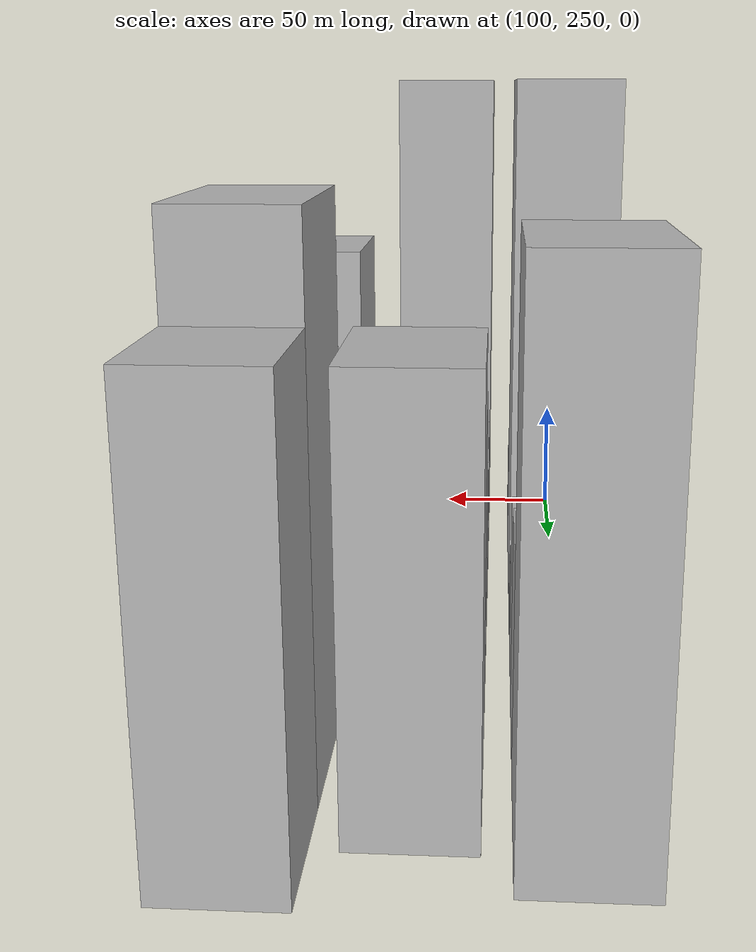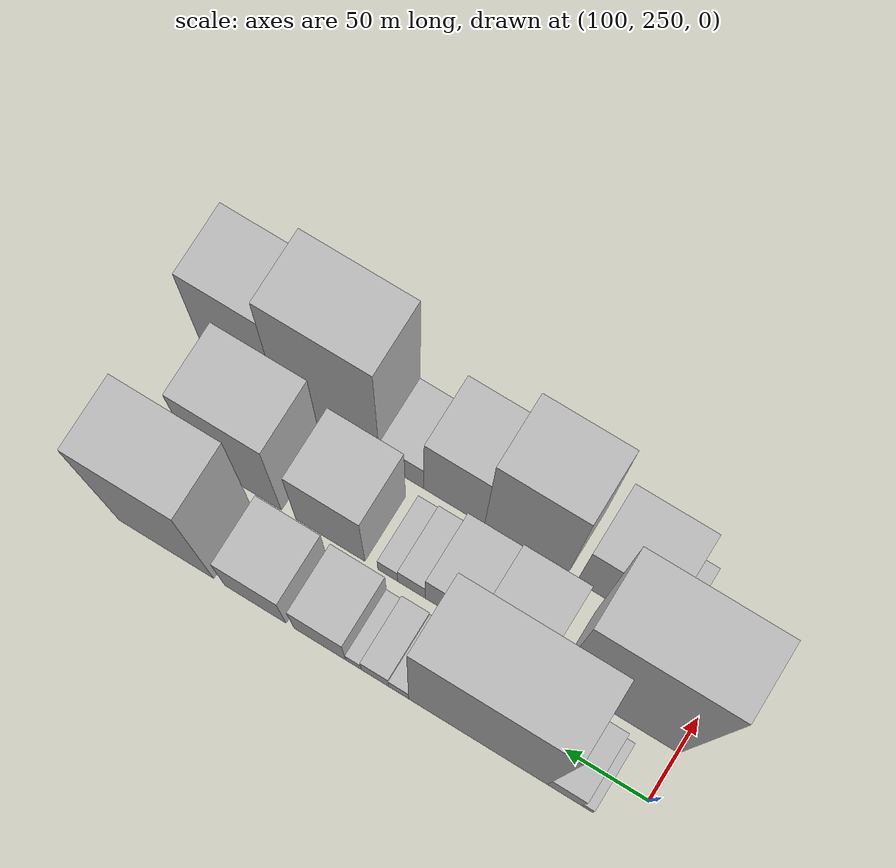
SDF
<sdf version="1.6">
 <world name="default">
  <model name="building_20">
   <static>1</static>
   <pose>100.0000 274.9264 0 0.000000 0.000000 0.000000</pose>
   <link name="link">
    <pose>0 0 7.50 0 0 0</pose>
    <collision name="collision"><geometry><box><size>40.0000 6.4674 15.0000</size></box></geometry></collision>
    <visual name="visual">
     <cast_shadows>0</cast_shadows>
     <geometry><box><size>40.0000 6.4674 15.0000</size></box></geometry>
     <material>
      <script>
       <uri>model://HANNAS_wall/materials/scripts</uri>
       <uri>model://HANNAS_wall/materials/textures</uri>
       <name>vrc/HANNAS_wall</name>
      </script>
     </material>
    </visual>
   </link>
  </model>
  <model name="building_21">
   <static>1</static>
   <pose>100.0000 288.3345 0 0.000000 0.000000 0.000000</pose>
   <link name="link">
    <pose>0 0 19.50 0 0 0</pose>
    <collision name="collision"><geometry><box><size>40.0000 20.3488 39.0000</size></box></geometry></collision>
    <visual name="visual">
     <cast_shadows>0</cast_shadows>
     <geometry><box><size>40.0000 20.3488 39.0000</size></box></geometry>
     <material>
      <script>
       <uri>model://HANNAS_wall/materials/scripts</uri>
       <uri>model://HANNAS_wall/materials/textures</uri>
       <name>vrc/HANNAS_wall</name>
      </script>
     </material>
    </visual>
   </link>
  </model>
  <model name="building_22">
   <static>1</static>
   <pose>100.0000 340.1343 0 0.000000 0.000000 0.000000</pose>
   <link name="link">
    <pose>0 0 106.50 0 0 0</pose>
    <collision name="collision"><geometry><box><size>40.0000 83.2506 213.0000</size></box></geometry></collision>
    <visual name="visual">
     <cast_shadows>0</cast_shadows>
     <geometry><box><size>40.0000 83.2506 213.0000</size></box></geometry>
     <material>
      <script>
       <uri>model://HANNAS_wall/materials/scripts</uri>
       <uri>model://HANNAS_wall/materials/textures</uri>
       <name>vrc/HANNAS_wall</name>
      </script>
     </material>
    </visual>
   </link>
  </model>
  <model name="building_23">
   <static>1</static>
   <pose>100.0000 387.8047 0 0.000000 0.000000 0.000000</pose>
   <link name="link">
    <pose>0 0 13.50 0 0 0</pose>
    <collision name="collision"><geometry><box><size>40.0000 12.0903 27.0000</size></box></geometry></collision>
    <visual name="visual">
     <cast_shadows>0</cast_shadows>
     <geometry><box><size>40.0000 12.0903 27.0000</size></box></geometry>
     <material>
      <script>
       <uri>model://HANNAS_wall/materials/scripts</uri>
       <uri>model://HANNAS_wall/materials/textures</uri>
       <name>vrc/HANNAS_wall</name>
      </script>
     </material>
    </visual>
   </link>
  </model>
  <model name="building_24">
   <static>1</static>
   <pose>100.0000 402.1680 0 0.000000 0.000000 0.000000</pose>
   <link name="link">
    <pose>0 0 16.50 0 0 0</pose>
    <collision name="collision"><geometry><box><size>40.0000 16.6363 33.0000</size></box></geometry></collision>
    <visual name="visual">
     <cast_shadows>0</cast_shadows>
     <geometry><box><size>40.0000 16.6363 33.0000</size></box></geometry>
     <material>
      <script>
       <uri>model://HANNAS_wall/materials/scripts</uri>
       <uri>model://HANNAS_wall/materials/textures</uri>
       <name>vrc/HANNAS_wall</name>
      </script>
     </material>
    </visual>
   </link>
  </model>
  <model name="building_25">
   <static>1</static>
   <pose>100.0000 415.1284 0 0.000000 0.000000 0.000000</pose>
   <link name="link">
    <pose>0 0 10.50 0 0 0</pose>
    <collision name="collision"><geometry><box><size>40.0000 9.2845 21.0000</size></box></geometry></collision>
    <visual name="visual">
     <cast_shadows>0</cast_shadows>
     <geometry><box><size>40.0000 9.2845 21.0000</size></box></geometry>
     <material>
      <script>
       <uri>model://HANNAS_wall/materials/scripts</uri>
       <uri>model://HANNAS_wall/materials/textures</uri>
       <name>vrc/HANNAS_wall</name>
      </script>
     </material>
    </visual>
   </link>
  </model>
  <model name="building_26">
   <static>1</static>
   <pose>100.0000 435.5712 0 0.000000 0.000000 0.000000</pose>
   <link name="link">
    <pose>0 0 31.50 0 0 0</pose>
    <collision name="collision"><geometry><box><size>40.0000 31.6012 63.0000</size></box></geometry></collision>
    <visual name="visual">
     <cast_shadows>0</cast_shadows>
     <geometry><box><size>40.0000 31.6012 63.0000</size></box></geometry>
     <material>
      <script>
       <uri>model://HANNAS_wall/materials/scripts</uri>
       <uri>model://HANNAS_wall/materials/textures</uri>
       <name>vrc/HANNAS_wall</name>
      </script>
     </material>
    </visual>
   </link>
  </model>
  <model name="building_27">
   <static>1</static>
   <pose>100.0000 475.1789 0 0.000000 0.000000 0.000000</pose>
   <link name="link">
    <pose>0 0 36.00 0 0 0</pose>
    <collision name="collision"><geometry><box><size>40.0000 37.6142 72.0000</size></box></geometry></collision>
    <visual name="visual">
     <cast_shadows>0</cast_shadows>
     <geometry><box><size>40.0000 37.6142 72.0000</size></box></geometry>
     <material>
      <script>
       <uri>model://HANNAS_wall/materials/scripts</uri>
       <uri>model://HANNAS_wall/materials/textures</uri>
       <name>vrc/HANNAS_wall</name>
      </script>
     </material>
    </visual>
   </link>
  </model>
  <model name="building_28">
   <static>1</static>
   <pose>100.0000 530.3695 0 0.000000 0.000000 0.000000</pose>
   <link name="link">
    <pose>0 0 87.00 0 0 0</pose>
    <collision name="collision"><geometry><box><size>40.0000 58.7670 174.0000</size></box></geometry></collision>
    <visual name="visual">
     <cast_shadows>0</cast_shadows>
     <geometry><box><size>40.0000 58.7670 174.0000</size></box></geometry>
     <material>
      <script>
       <uri>model://HANNAS_wall/materials/scripts</uri>
       <uri>model://HANNAS_wall/materials/textures</uri>
       <name>vrc/HANNAS_wall</name>
      </script>
     </material>
    </visual>
   </link>
  </model>
  <model name="building_52">
   <static>1</static>
   <pose>149.0000 286.1832 0 0.000000 0.000000 0.000000</pose>
   <link name="link">
    <pose>0 0 106.50 0 0 0</pose>
    <collision name="collision"><geometry><box><size>40.0000 73.5614 213.0000</size></box></geometry></collision>
    <visual name="visual">
     <cast_shadows>0</cast_shadows>
     <geometry><box><size>40.0000 73.5614 213.0000</size></box></geometry>
     <material>
      <script>
       <uri>model://HANNAS_wall/materials/scripts</uri>
       <uri>model://HANNAS_wall/materials/textures</uri>
       <name>vrc/HANNAS_wall</name>
      </script>
     </material>
    </visual>
   </link>
  </model>
  <model name="building_53">
   <static>1</static>
   <pose>149.0000 350.6762 0 0.000000 0.000000 0.000000</pose>
   <link name="link">
    <pose>0 0 33.00 0 0 0</pose>
    <collision name="collision"><geometry><box><size>40.0000 39.4246 66.0000</size></box></geometry></collision>
    <visual name="visual">
     <cast_shadows>0</cast_shadows>
     <geometry><box><size>40.0000 39.4246 66.0000</size></box></geometry>
     <material>
      <script>
       <uri>model://HANNAS_wall/materials/scripts</uri>
       <uri>model://HANNAS_wall/materials/textures</uri>
       <name>vrc/HANNAS_wall</name>
      </script>
     </material>
    </visual>
   </link>
  </model>
  <model name="building_54">
   <static>1</static>
   <pose>149.0000 386.2538 0 0.000000 0.000000 0.000000</pose>
   <link name="link">
    <pose>0 0 30.00 0 0 0</pose>
    <collision name="collision"><geometry><box><size>40.0000 31.7305 60.0000</size></box></geometry></collision>
    <visual name="visual">
     <cast_shadows>0</cast_shadows>
     <geometry><box><size>40.0000 31.7305 60.0000</size></box></geometry>
     <material>
      <script>
       <uri>model://HANNAS_wall/materials/scripts</uri>
       <uri>model://HANNAS_wall/materials/textures</uri>
       <name>vrc/HANNAS_wall</name>
      </script>
     </material>
    </visual>
   </link>
  </model>
  <model name="building_55">
   <static>1</static>
   <pose>149.0000 410.4090 0 0.000000 0.000000 0.000000</pose>
   <link name="link">
    <pose>0 0 16.50 0 0 0</pose>
    <collision name="collision"><geometry><box><size>40.0000 16.5799 33.0000</size></box></geometry></collision>
    <visual name="visual">
     <cast_shadows>0</cast_shadows>
     <geometry><box><size>40.0000 16.5799 33.0000</size></box></geometry>
     <material>
      <script>
       <uri>model://HANNAS_wall/materials/scripts</uri>
       <uri>model://HANNAS_wall/materials/textures</uri>
       <name>vrc/HANNAS_wall</name>
      </script>
     </material>
    </visual>
   </link>
  </model>
  <model name="building_56">
   <static>1</static>
   <pose>149.0000 424.7665 0 0.000000 0.000000 0.000000</pose>
   <link name="link">
    <pose>0 0 13.50 0 0 0</pose>
    <collision name="collision"><geometry><box><size>40.0000 12.1351 27.0000</size></box></geometry></collision>
    <visual name="visual">
     <cast_shadows>0</cast_shadows>
     <geometry><box><size>40.0000 12.1351 27.0000</size></box></geometry>
     <material>
      <script>
       <uri>model://HANNAS_wall/materials/scripts</uri>
       <uri>model://HANNAS_wall/materials/textures</uri>
       <name>vrc/HANNAS_wall</name>
      </script>
     </material>
    </visual>
   </link>
  </model>
  <model name="building_57">
   <static>1</static>
   <pose>149.0000 460.0858 0 0.000000 0.000000 0.000000</pose>
   <link name="link">
    <pose>0 0 54.00 0 0 0</pose>
    <collision name="collision"><geometry><box><size>40.0000 42.5035 108.0000</size></box></geometry></collision>
    <visual name="visual">
     <cast_shadows>0</cast_shadows>
     <geometry><box><size>40.0000 42.5035 108.0000</size></box></geometry>
     <material>
      <script>
       <uri>model://HANNAS_wall/materials/scripts</uri>
       <uri>model://HANNAS_wall/materials/textures</uri>
       <name>vrc/HANNAS_wall</name>
      </script>
     </material>
    </visual>
   </link>
  </model>
  <model name="building_58">
   <static>1</static>
   <pose>149.0000 516.4774 0 0.000000 0.000000 0.000000</pose>
   <link name="link">
    <pose>0 0 70.50 0 0 0</pose>
    <collision name="collision"><geometry><box><size>40.0000 52.2797 141.0000</size></box></geometry></collision>
    <visual name="visual">
     <cast_shadows>0</cast_shadows>
     <geometry><box><size>40.0000 52.2797 141.0000</size></box></geometry>
     <material>
      <script>
       <uri>model://HANNAS_wall/materials/scripts</uri>
       <uri>model://HANNAS_wall/materials/textures</uri>
       <name>vrc/HANNAS_wall</name>
      </script>
     </material>
    </visual>
   </link>
  </model>
  <model name="building_83">
   <static>1</static>
   <pose>198.0000 286.3210 0 0.000000 0.000000 0.000000</pose>
   <link name="link">
    <pose>0 0 12.00 0 0 0</pose>
    <collision name="collision"><geometry><box><size>40.0000 11.7885 24.0000</size></box></geometry></collision>
    <visual name="visual">
     <cast_shadows>0</cast_shadows>
     <geometry><box><size>40.0000 11.7885 24.0000</size></box></geometry>
     <material>
      <script>
       <uri>model://HANNAS_wall/materials/scripts</uri>
       <uri>model://HANNAS_wall/materials/textures</uri>
       <name>vrc/HANNAS_wall</name>
      </script>
     </material>
    </visual>
   </link>
  </model>
  <model name="building_84">
   <static>1</static>
   <pose>198.0000 315.8248 0 0.000000 0.000000 0.000000</pose>
   <link name="link">
    <pose>0 0 45.00 0 0 0</pose>
    <collision name="collision"><geometry><box><size>40.0000 47.2190 90.0000</size></box></geometry></collision>
    <visual name="visual">
     <cast_shadows>0</cast_shadows>
     <geometry><box><size>40.0000 47.2190 90.0000</size></box></geometry>
     <material>
      <script>
       <uri>model://HANNAS_wall/materials/scripts</uri>
       <uri>model://HANNAS_wall/materials/textures</uri>
       <name>vrc/HANNAS_wall</name>
      </script>
     </material>
    </visual>
   </link>
  </model>
  <model name="building_85">
   <static>1</static>
   <pose>198.0000 370.6007 0 0.000000 0.000000 0.000000</pose>
   <link name="link">
    <pose>0 0 75.00 0 0 0</pose>
    <collision name="collision"><geometry><box><size>40.0000 50.3329 150.0000</size></box></geometry></collision>
    <visual name="visual">
     <cast_shadows>0</cast_shadows>
     <geometry><box><size>40.0000 50.3329 150.0000</size></box></geometry>
     <material>
      <script>
       <uri>model://HANNAS_wall/materials/scripts</uri>
       <uri>model://HANNAS_wall/materials/textures</uri>
       <name>vrc/HANNAS_wall</name>
      </script>
     </material>
    </visual>
   </link>
  </model>
  <model name="building_86">
   <static>1</static>
   <pose>198.0000 414.5280 0 0.000000 0.000000 0.000000</pose>
   <link name="link">
    <pose>0 0 52.50 0 0 0</pose>
    <collision name="collision"><geometry><box><size>40.0000 37.5215 105.0000</size></box></geometry></collision>
    <visual name="visual">
     <cast_shadows>0</cast_shadows>
     <geometry><box><size>40.0000 37.5215 105.0000</size></box></geometry>
     <material>
      <script>
       <uri>model://HANNAS_wall/materials/scripts</uri>
       <uri>model://HANNAS_wall/materials/textures</uri>
       <name>vrc/HANNAS_wall</name>
      </script>
     </material>
    </visual>
   </link>
  </model>
  <model name="building_87">
   <static>1</static>
   <pose>198.0000 446.6433 0 0.000000 0.000000 0.000000</pose>
   <link name="link">
    <pose>0 0 22.50 0 0 0</pose>
    <collision name="collision"><geometry><box><size>40.0000 26.7092 45.0000</size></box></geometry></collision>
    <visual name="visual">
     <cast_shadows>0</cast_shadows>
     <geometry><box><size>40.0000 26.7092 45.0000</size></box></geometry>
     <material>
      <script>
       <uri>model://HANNAS_wall/materials/scripts</uri>
       <uri>model://HANNAS_wall/materials/textures</uri>
       <name>vrc/HANNAS_wall</name>
      </script>
     </material>
    </visual>
   </link>
  </model>
  <model name="building_88">
   <static>1</static>
   <pose>198.0000 491.5813 0 0.000000 0.000000 0.000000</pose>
   <link name="link">
    <pose>0 0 90.00 0 0 0</pose>
    <collision name="collision"><geometry><box><size>40.0000 63.1667 180.0000</size></box></geometry></collision>
    <visual name="visual">
     <cast_shadows>0</cast_shadows>
     <geometry><box><size>40.0000 63.1667 180.0000</size></box></geometry>
     <material>
      <script>
       <uri>model://HANNAS_wall/materials/scripts</uri>
       <uri>model://HANNAS_wall/materials/textures</uri>
       <name>vrc/HANNAS_wall</name>
      </script>
     </material>
    </visual>
   </link>
  </model>
  <model name="building_89">
   <static>1</static>
   <pose>198.0000 545.6314 0 0.000000 0.000000 0.000000</pose>
   <link name="link">
    <pose>0 0 73.50 0 0 0</pose>
    <collision name="collision"><geometry><box><size>40.0000 44.9336 147.0000</size></box></geometry></collision>
    <visual name="visual">
     <cast_shadows>0</cast_shadows>
     <geometry><box><size>40.0000 44.9336 147.0000</size></box></geometry>
     <material>
      <script>
       <uri>model://HANNAS_wall/materials/scripts</uri>
       <uri>model://HANNAS_wall/materials/textures</uri>
       <name>vrc/HANNAS_wall</name>
      </script>
     </material>
    </visual>
   </link>
  </model>
 </world>
</sdf>
